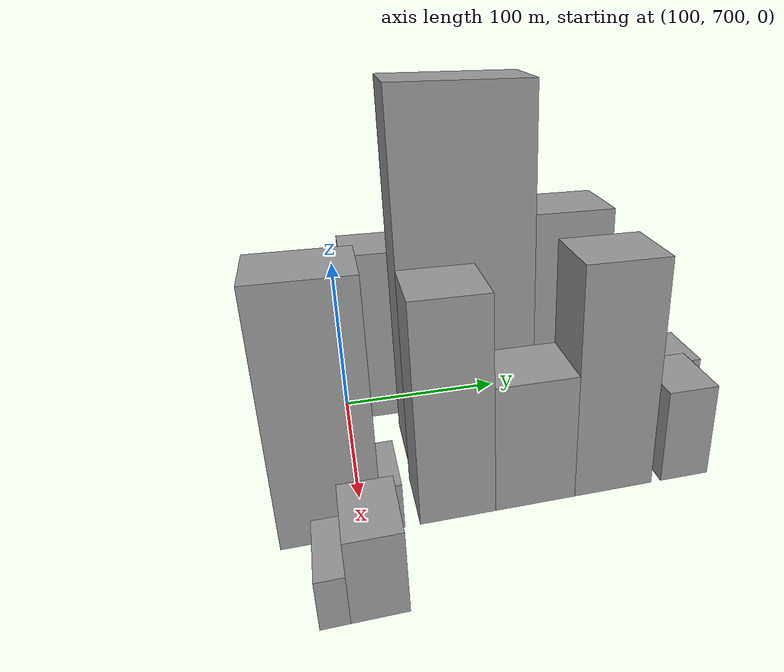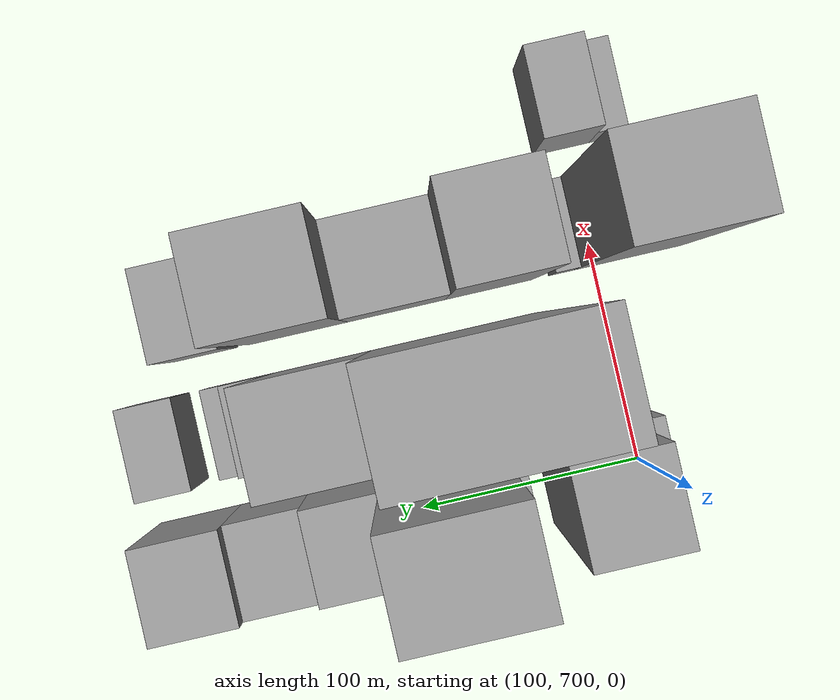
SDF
<sdf version="1.6">
 <world name="default">
  <model name="building_47">
   <static>1</static>
   <pose>100.0000 697.0982 0 0.000000 0.000000 0.000000</pose>
   <link name="link">
    <pose>0 0 15.00 0 0 0</pose>
    <collision name="collision"><geometry><box><size>40.0000 15.2777 30.0000</size></box></geometry></collision>
    <visual name="visual">
     <cast_shadows>0</cast_shadows>
     <geometry><box><size>40.0000 15.2777 30.0000</size></box></geometry>
     <material>
      <script>
       <uri>model://grey_wall/materials/scripts</uri>
       <uri>model://grey_wall/materials/textures</uri>
       <name>vrc/grey_wall</name>
      </script>
     </material>
    </visual>
   </link>
  </model>
  <model name="building_48">
   <static>1</static>
   <pose>100.0000 724.2057 0 0.000000 0.000000 0.000000</pose>
   <link name="link">
    <pose>0 0 55.50 0 0 0</pose>
    <collision name="collision"><geometry><box><size>40.0000 38.9373 111.0000</size></box></geometry></collision>
    <visual name="visual">
     <cast_shadows>0</cast_shadows>
     <geometry><box><size>40.0000 38.9373 111.0000</size></box></geometry>
     <material>
      <script>
       <uri>model://grey_wall/materials/scripts</uri>
       <uri>model://grey_wall/materials/textures</uri>
       <name>vrc/grey_wall</name>
      </script>
     </material>
    </visual>
   </link>
  </model>
  <model name="building_49">
   <static>1</static>
   <pose>100.0000 756.7948 0 0.000000 0.000000 0.000000</pose>
   <link name="link">
    <pose>0 0 10.50 0 0 0</pose>
    <collision name="collision"><geometry><box><size>40.0000 10.2408 21.0000</size></box></geometry></collision>
    <visual name="visual">
     <cast_shadows>0</cast_shadows>
     <geometry><box><size>40.0000 10.2408 21.0000</size></box></geometry>
     <material>
      <script>
       <uri>model://grey_wall/materials/scripts</uri>
       <uri>model://grey_wall/materials/textures</uri>
       <name>vrc/grey_wall</name>
      </script>
     </material>
    </visual>
   </link>
  </model>
  <model name="building_50">
   <static>1</static>
   <pose>100.0000 788.2646 0 0.000000 0.000000 0.000000</pose>
   <link name="link">
    <pose>0 0 81.00 0 0 0</pose>
    <collision name="collision"><geometry><box><size>40.0000 52.6990 162.0000</size></box></geometry></collision>
    <visual name="visual">
     <cast_shadows>0</cast_shadows>
     <geometry><box><size>40.0000 52.6990 162.0000</size></box></geometry>
     <material>
      <script>
       <uri>model://grey_wall/materials/scripts</uri>
       <uri>model://grey_wall/materials/textures</uri>
       <name>vrc/grey_wall</name>
      </script>
     </material>
    </visual>
   </link>
  </model>
  <model name="building_51">
   <static>1</static>
   <pose>100.0000 831.2229 0 0.000000 0.000000 0.000000</pose>
   <link name="link">
    <pose>0 0 33.00 0 0 0</pose>
    <collision name="collision"><geometry><box><size>40.0000 33.2175 66.0000</size></box></geometry></collision>
    <visual name="visual">
     <cast_shadows>0</cast_shadows>
     <geometry><box><size>40.0000 33.2175 66.0000</size></box></geometry>
     <material>
      <script>
       <uri>model://grey_wall/materials/scripts</uri>
       <uri>model://grey_wall/materials/textures</uri>
       <name>vrc/grey_wall</name>
      </script>
     </material>
    </visual>
   </link>
  </model>
  <model name="building_52">
   <static>1</static>
   <pose>100.0000 864.0846 0 0.000000 0.000000 0.000000</pose>
   <link name="link">
    <pose>0 0 28.50 0 0 0</pose>
    <collision name="collision"><geometry><box><size>40.0000 32.5060 57.0000</size></box></geometry></collision>
    <visual name="visual">
     <cast_shadows>0</cast_shadows>
     <geometry><box><size>40.0000 32.5060 57.0000</size></box></geometry>
     <material>
      <script>
       <uri>model://grey_wall/materials/scripts</uri>
       <uri>model://grey_wall/materials/textures</uri>
       <name>vrc/grey_wall</name>
      </script>
     </material>
    </visual>
   </link>
  </model>
  <model name="building_53">
   <static>1</static>
   <pose>100.0000 899.1114 0 0.000000 0.000000 0.000000</pose>
   <link name="link">
    <pose>0 0 33.00 0 0 0</pose>
    <collision name="collision"><geometry><box><size>40.0000 37.5475 66.0000</size></box></geometry></collision>
    <visual name="visual">
     <cast_shadows>0</cast_shadows>
     <geometry><box><size>40.0000 37.5475 66.0000</size></box></geometry>
     <material>
      <script>
       <uri>model://grey_wall/materials/scripts</uri>
       <uri>model://grey_wall/materials/textures</uri>
       <name>vrc/grey_wall</name>
      </script>
     </material>
    </visual>
   </link>
  </model>
  <model name="building_100">
   <static>1</static>
   <pose>155.0000 768.6845 0 0.000000 0.000000 0.000000</pose>
   <link name="link">
    <pose>0 0 106.50 0 0 0</pose>
    <collision name="collision"><geometry><box><size>40.0000 76.2935 213.0000</size></box></geometry></collision>
    <visual name="visual">
     <cast_shadows>0</cast_shadows>
     <geometry><box><size>40.0000 76.2935 213.0000</size></box></geometry>
     <material>
      <script>
       <uri>model://grey_wall/materials/scripts</uri>
       <uri>model://grey_wall/materials/textures</uri>
       <name>vrc/grey_wall</name>
      </script>
     </material>
    </visual>
   </link>
  </model>
  <model name="building_101">
   <static>1</static>
   <pose>155.0000 829.3334 0 0.000000 0.000000 0.000000</pose>
   <link name="link">
    <pose>0 0 72.00 0 0 0</pose>
    <collision name="collision"><geometry><box><size>40.0000 45.0042 144.0000</size></box></geometry></collision>
    <visual name="visual">
     <cast_shadows>0</cast_shadows>
     <geometry><box><size>40.0000 45.0042 144.0000</size></box></geometry>
     <material>
      <script>
       <uri>model://grey_wall/materials/scripts</uri>
       <uri>model://grey_wall/materials/textures</uri>
       <name>vrc/grey_wall</name>
      </script>
     </material>
    </visual>
   </link>
  </model>
  <model name="building_102">
   <static>1</static>
   <pose>155.0000 862.3340 0 0.000000 0.000000 0.000000</pose>
   <link name="link">
    <pose>0 0 18.00 0 0 0</pose>
    <collision name="collision"><geometry><box><size>40.0000 20.9971 36.0000</size></box></geometry></collision>
    <visual name="visual">
     <cast_shadows>0</cast_shadows>
     <geometry><box><size>40.0000 20.9971 36.0000</size></box></geometry>
     <material>
      <script>
       <uri>model://grey_wall/materials/scripts</uri>
       <uri>model://grey_wall/materials/textures</uri>
       <name>vrc/grey_wall</name>
      </script>
     </material>
    </visual>
   </link>
  </model>
  <model name="building_103">
   <static>1</static>
   <pose>155.0000 877.9885 0 0.000000 0.000000 0.000000</pose>
   <link name="link">
    <pose>0 0 12.00 0 0 0</pose>
    <collision name="collision"><geometry><box><size>40.0000 10.3117 24.0000</size></box></geometry></collision>
    <visual name="visual">
     <cast_shadows>0</cast_shadows>
     <geometry><box><size>40.0000 10.3117 24.0000</size></box></geometry>
     <material>
      <script>
       <uri>model://grey_wall/materials/scripts</uri>
       <uri>model://grey_wall/materials/textures</uri>
       <name>vrc/grey_wall</name>
      </script>
     </material>
    </visual>
   </link>
  </model>
  <model name="building_104">
   <static>1</static>
   <pose>155.0000 904.3939 0 0.000000 0.000000 0.000000</pose>
   <link name="link">
    <pose>0 0 21.00 0 0 0</pose>
    <collision name="collision"><geometry><box><size>40.0000 24.4991 42.0000</size></box></geometry></collision>
    <visual name="visual">
     <cast_shadows>0</cast_shadows>
     <geometry><box><size>40.0000 24.4991 42.0000</size></box></geometry>
     <material>
      <script>
       <uri>model://grey_wall/materials/scripts</uri>
       <uri>model://grey_wall/materials/textures</uri>
       <name>vrc/grey_wall</name>
      </script>
     </material>
    </visual>
   </link>
  </model>
  <model name="building_150">
   <static>1</static>
   <pose>210.0000 684.3448 0 0.000000 0.000000 0.000000</pose>
   <link name="link">
    <pose>0 0 70.50 0 0 0</pose>
    <collision name="collision"><geometry><box><size>40.0000 50.6925 141.0000</size></box></geometry></collision>
    <visual name="visual">
     <cast_shadows>0</cast_shadows>
     <geometry><box><size>40.0000 50.6925 141.0000</size></box></geometry>
     <material>
      <script>
       <uri>model://grey_wall/materials/scripts</uri>
       <uri>model://grey_wall/materials/textures</uri>
       <name>vrc/grey_wall</name>
      </script>
     </material>
    </visual>
   </link>
  </model>
  <model name="building_151">
   <static>1</static>
   <pose>210.0000 715.2843 0 0.000000 0.000000 0.000000</pose>
   <link name="link">
    <pose>0 0 13.50 0 0 0</pose>
    <collision name="collision"><geometry><box><size>40.0000 11.1866 27.0000</size></box></geometry></collision>
    <visual name="visual">
     <cast_shadows>0</cast_shadows>
     <geometry><box><size>40.0000 11.1866 27.0000</size></box></geometry>
     <material>
      <script>
       <uri>model://grey_wall/materials/scripts</uri>
       <uri>model://grey_wall/materials/textures</uri>
       <name>vrc/grey_wall</name>
      </script>
     </material>
    </visual>
   </link>
  </model>
  <model name="building_152">
   <static>1</static>
   <pose>210.0000 749.1283 0 0.000000 0.000000 0.000000</pose>
   <link name="link">
    <pose>0 0 63.00 0 0 0</pose>
    <collision name="collision"><geometry><box><size>40.0000 40.5014 126.0000</size></box></geometry></collision>
    <visual name="visual">
     <cast_shadows>0</cast_shadows>
     <geometry><box><size>40.0000 40.5014 126.0000</size></box></geometry>
     <material>
      <script>
       <uri>model://grey_wall/materials/scripts</uri>
       <uri>model://grey_wall/materials/textures</uri>
       <name>vrc/grey_wall</name>
      </script>
     </material>
    </visual>
   </link>
  </model>
  <model name="building_153">
   <static>1</static>
   <pose>210.0000 791.7568 0 0.000000 0.000000 0.000000</pose>
   <link name="link">
    <pose>0 0 37.50 0 0 0</pose>
    <collision name="collision"><geometry><box><size>40.0000 44.7557 75.0000</size></box></geometry></collision>
    <visual name="visual">
     <cast_shadows>0</cast_shadows>
     <geometry><box><size>40.0000 44.7557 75.0000</size></box></geometry>
     <material>
      <script>
       <uri>model://grey_wall/materials/scripts</uri>
       <uri>model://grey_wall/materials/textures</uri>
       <name>vrc/grey_wall</name>
      </script>
     </material>
    </visual>
   </link>
  </model>
  <model name="building_154">
   <static>1</static>
   <pose>210.0000 836.9797 0 0.000000 0.000000 0.000000</pose>
   <link name="link">
    <pose>0 0 67.50 0 0 0</pose>
    <collision name="collision"><geometry><box><size>40.0000 45.6900 135.0000</size></box></geometry></collision>
    <visual name="visual">
     <cast_shadows>0</cast_shadows>
     <geometry><box><size>40.0000 45.6900 135.0000</size></box></geometry>
     <material>
      <script>
       <uri>model://grey_wall/materials/scripts</uri>
       <uri>model://grey_wall/materials/textures</uri>
       <name>vrc/grey_wall</name>
      </script>
     </material>
    </visual>
   </link>
  </model>
  <model name="building_155">
   <static>1</static>
   <pose>210.0000 880.3479 0 0.000000 0.000000 0.000000</pose>
   <link name="link">
    <pose>0 0 28.50 0 0 0</pose>
    <collision name="collision"><geometry><box><size>40.0000 29.0463 57.0000</size></box></geometry></collision>
    <visual name="visual">
     <cast_shadows>0</cast_shadows>
     <geometry><box><size>40.0000 29.0463 57.0000</size></box></geometry>
     <material>
      <script>
       <uri>model://grey_wall/materials/scripts</uri>
       <uri>model://grey_wall/materials/textures</uri>
       <name>vrc/grey_wall</name>
      </script>
     </material>
    </visual>
   </link>
  </model>
  <model name="building_203">
   <static>1</static>
   <pose>265.0000 682.7655 0 0.000000 0.000000 0.000000</pose>
   <link name="link">
    <pose>0 0 13.50 0 0 0</pose>
    <collision name="collision"><geometry><box><size>40.0000 13.3385 27.0000</size></box></geometry></collision>
    <visual name="visual">
     <cast_shadows>0</cast_shadows>
     <geometry><box><size>40.0000 13.3385 27.0000</size></box></geometry>
     <material>
      <script>
       <uri>model://grey_wall/materials/scripts</uri>
       <uri>model://grey_wall/materials/textures</uri>
       <name>vrc/grey_wall</name>
      </script>
     </material>
    </visual>
   </link>
  </model>
  <model name="building_204">
   <static>1</static>
   <pose>265.0000 702.5798 0 0.000000 0.000000 0.000000</pose>
   <link name="link">
    <pose>0 0 22.50 0 0 0</pose>
    <collision name="collision"><geometry><box><size>40.0000 26.2903 45.0000</size></box></geometry></collision>
    <visual name="visual">
     <cast_shadows>0</cast_shadows>
     <geometry><box><size>40.0000 26.2903 45.0000</size></box></geometry>
     <material>
      <script>
       <uri>model://grey_wall/materials/scripts</uri>
       <uri>model://grey_wall/materials/textures</uri>
       <name>vrc/grey_wall</name>
      </script>
     </material>
    </visual>
   </link>
  </model>
 </world>
</sdf>
